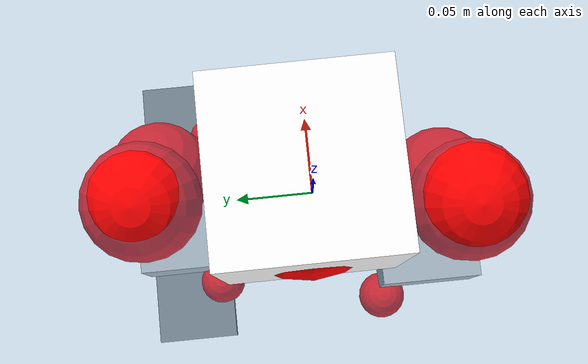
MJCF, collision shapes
<mujoco model="pi_12dof_release_v1">
  <compiler angle="radian" assetdir="assets" balanceinertia="true" inertiafromgeom="false"/>

  <option timestep="0.005" density="1.2" viscosity="2e-05"/>

  <size nkey="1"/>

  <visual>
    <quality shadowsize="8192"/>
    <map shadowclip="0.5"/>
  </visual>

  <default>
    <default class="/">
      <joint armature="0.01" damping="0.01" frictionloss="0.01"/>
      <geom contype="0" conaffinity="0" group="1" solref="-1000 -80"/>
      <site size="0.01 0.005 0.005" group="5"/>
      <general forcelimited="true" biastype="affine" gainprm="20" biasprm="0 -20 -0.5"/>
      <default class="foot">
        <geom size="0.0845 0.036 0.005" type="box" condim="6" group="4" priority="1" friction="0.9 0.2 0.2" solimp="0.015 1 0.005"/>
      </default>
      <default class="reward_collision_sphere">
        <geom group="5" rgba="1 0 0 1"/>
      </default>
    </default>
  </default>

  <asset>
    <texture type="skybox" colorspace="auto" name="//unnamed_texture_0" builtin="gradient" rgb1="0.95 0.95 0.95" rgb2="0.95 0.95 0.95" width="100" height="600"/>
    <texture type="2d" colorspace="auto" name="texplane" builtin="checker" rgb1="0.345 0.575 0.748" rgb2="0.345 0.575 0.748" markrgb="1 1 1" width="512" height="512"/>
    <material name="MatPlane" class="/" texture="texplane" texuniform="true" texrepeat="2 2" specular="0.9"/>
    <mesh name="baselink_1" class="/" file="baselink_1.STL"/>
    <mesh name="r_hip_pitch_link" class="/" file="r_hip_pitch_link.STL"/>
    <mesh name="r_hip_roll_link" class="/" file="r_hip_roll_link.STL"/>
    <mesh name="r_thigh_link" class="/" file="r_thigh_link.STL"/>
    <mesh name="r_calf_link" class="/" file="r_calf_link.STL"/>
    <mesh name="r_ankle_pitch_link" class="/" file="r_ankle_pitch_link.STL"/>
    <mesh name="r_ankle_roll_link" class="/" file="r_ankle_roll_link.STL"/>
    <mesh name="l_hip_pitch_link" class="/" file="l_hip_pitch_link.STL"/>
    <mesh name="l_hip_roll_link" class="/" file="l_hip_roll_link.STL"/>
    <mesh name="l_thigh_link" class="/" file="l_thigh_link.STL"/>
    <mesh name="l_calf_link" class="/" file="l_calf_link.STL"/>
    <mesh name="l_ankle_pitch_link" class="/" file="l_ankle_pitch_link.STL"/>
    <mesh name="l_ankle_roll_link" class="/" file="l_ankle_roll_link.STL"/>
  </asset>

  <worldbody>
    <geom name="floor" class="/" size="100 100 0.125" type="plane" group="0" material="MatPlane"/>
    <light name="toplight_shadow" class="/" pos="0 0 5" dir="0.0990148 0.0990148 -0.990148" type="directional" ambient="0.04 0.04 0.04" diffuse="0.55 0.55 0.55" specular="0.12 0.12 0.12"/>
    <light name="toplight_fill" class="/" pos="0 0 5" dir="0.0990148 0.0990148 -0.990148" type="directional" castshadow="false" ambient="0.04 0.04 0.04" diffuse="0.3 0.3 0.3" specular="0.08 0.08 0.08"/>
    <body name="trunk" pos="-0.00165617 0.00580523 0.00149227" quat="0.999996 -0.00181627 -0.00216629 0.000780472">
      <inertial pos="0.00710382 0.0105065 0.0237417" quat="0.692425 -0.00781576 -0.00333631 0.72144" mass="2.71111" diaginertia="0.0169788 0.0546398 0.000949043"/>
      <joint name="//unnamed_joint_0" type="free"/>
      <geom name="//unnamed_geom_1" class="/" type="mesh" density="0" rgba="1 1 1 1" mesh="baselink_1"/>
      <geom name="//unnamed_geom_2" class="/" size="0.0534015 0.0534015 0.0534015" pos="0 0 0.0592895" type="box" rgba="1 1 1 1"/>
      <geom name="//unnamed_geom_3" class="reward_collision_sphere" size="0.0587416" pos="0 0 0.0518783"/>
      <site name="imu" class="/" pos="-0.00616341 0.00827838 0.00830336" size="0.0106803"/>
      <camera name="track" class="/" pos="0 -2.80033 0" quat="0.707107 0.707107 0 0" mode="trackcom"/>
      <camera name="ego_camera" class="/" pos="0.0797101 0 0.133401" quat="-0.5 -0.5 0.5 0.5"/>
      <body name="r_hip_pitch_link" pos="-0.00293436 -0.02995 -0.023094" quat="0.992197 -1.10333e-05 -0.124682 0.000231497">
        <inertial pos="0.00267331 -0.0695211 0.00346972" quat="-0.0739604 0.688536 -0.0377596 0.720432" mass="0.459882" diaginertia="0.000144002 0.000548943 1.81405e-05"/>
        <joint name="r_hip_pitch_joint" class="/" pos="0 0 0" axis="0.00245649 -0.999996 0.00115266" range="-1.85395 1.15816" armature="0.0098115" damping="0" frictionloss="0.00543797"/>
        <geom name="//unnamed_geom_4" class="/" type="mesh" density="0" rgba="0.75294 0.75294 0.75294 1" mesh="r_hip_pitch_link"/>
        <geom name="//unnamed_geom_5" class="/" size="0.000534015 0.000534015 0.000534015" type="box" rgba="0.75294 0.75294 0.75294 1"/>
        <body name="r_hip_roll_link" pos="-0.00786926 -0.0835003 -0.000834339" quat="0.999984 -0.0034499 0.00408421 -0.0016158">
          <inertial pos="-0.000714078 -0.0110652 -0.0458741" quat="0.706073 -0.0680663 -0.0757843 0.700774" mass="0.457024" diaginertia="0.000512471 0.00132291 2.94403e-05"/>
          <joint name="r_hip_roll_joint" class="/" pos="0 0 0" axis="-0.999806 0.0196164 -0.00183143" stiffness="0.0126205" range="-0.100043 0.482592" armature="0.00638082" damping="0" frictionloss="0.0100036"/>
          <geom name="//unnamed_geom_6" class="/" type="mesh" density="0" rgba="0.75294 0.75294 0.75294 1" mesh="r_hip_roll_link"/>
          <geom name="//unnamed_geom_7" class="/" size="0.000534015 0.000534015 0.000534015" type="box" rgba="0.75294 0.75294 0.75294 1"/>
          <geom name="//unnamed_geom_8" class="reward_collision_sphere" size="0.0427212"/>
          <body name="r_thigh_link" pos="-0.00281679 0.000556938 -0.0481371" quat="0.999999 0.000407938 0.00108252 4.10342e-05">
            <inertial pos="0.00903615 0.00697546 -0.027675" quat="0.734886 0.678117 -0.008566 -0.00504125" mass="0.142987" diaginertia="0.000180441 0.000477815 1.36002e-05"/>
            <joint name="r_thigh_joint" class="/" pos="0 0 0" axis="0.0405097 -0.0116822 -0.999111" stiffness="0.0490507" range="-0.091378 0.805037" armature="0.00603469" damping="0.0627304" frictionloss="0.00519318"/>
            <geom name="//unnamed_geom_9" class="/" type="mesh" density="0" rgba="0.75294 0.75294 0.75294 1" mesh="r_thigh_link"/>
            <geom name="//unnamed_geom_10" class="/" size="0.000534015 0.000534015 0.000534015" type="box" rgba="0.75294 0.75294 0.75294 1"/>
            <body name="r_calf_link" pos="0.0108744 0.00122064 -0.0476956" quat="0.947596 1.17385e-07 0.319471 -7.64225e-05">
              <inertial pos="-0.00132783 -0.00410421 -0.0484018" quat="0.998782 0.005971 -0.0274408 0.0405602" mass="1.04275" diaginertia="0.00526211 0.0188213 3.88751e-05"/>
              <joint name="r_calf_joint" class="/" pos="0 0 0" axis="-0.029334 -0.998355 -0.0492575" stiffness="0.0111097" range="-1.56742 0.641644" armature="0.00994664" damping="0.0162842" frictionloss="0.00564969"/>
              <geom name="//unnamed_geom_11" class="/" type="mesh" density="0" rgba="0.75294 0.75294 0.75294 1" mesh="r_calf_link"/>
              <geom name="//unnamed_geom_12" class="/" size="0.000534015 0.000534015 0.000534015" type="box" rgba="0.75294 0.75294 0.75294 1"/>
              <geom name="//unnamed_geom_13" class="reward_collision_sphere" size="0.0427212"/>
              <body name="r_ankle_pitch_link" pos="0.00252294 0.00462087 -0.0950421" quat="0.980107 0.00066926 -0.198471 -1.26074e-05">
                <inertial pos="0.0010895 0.0103955 -0.00965239" quat="-0.0046675 0.707406 -0.00994067 0.706722" mass="0.210115" diaginertia="0.000445629 0.00118408 2.65867e-05"/>
                <joint name="r_ankle_pitch_joint" class="/" pos="0 0 0" axis="0.00165217 -0.999999 -0.000214372" stiffness="0.00746704" range="-1.17984 0.694012" armature="0.00668516" damping="0.00880309" frictionloss="0.00589456"/>
                <geom name="//unnamed_geom_14" class="/" type="mesh" density="0" rgba="0.75294 0.75294 0.75294 1" mesh="r_ankle_pitch_link"/>
                <geom name="//unnamed_geom_15" class="/" size="0.0416531 0.0427212 0.0267007" type="box" rgba="0.75294 0.75294 0.75294 1"/>
                <body name="r_ankle_roll_link" pos="0.0796546 0.0116386 -0.0090021" quat="1 0.000124213 -7.95772e-05 0.000124114">
                  <inertial pos="-0.020147 -0.00534874 -0.00921643" quat="0.562634 0.441511 0.428446 0.552218" mass="0.54516" diaginertia="0.00136392 0.0044086 5.80316e-05"/>
                  <joint name="r_ankle_roll_joint" class="/" pos="0 0 0" axis="-0.99817 -0.0554476 0.024118" range="-0.374738 0.00123603" armature="0.00984646" damping="0" frictionloss="0.00984704"/>
                  <geom name="//unnamed_geom_16" class="/" type="mesh" density="0" rgba="0.75294 0.75294 0.75294 1" mesh="r_ankle_roll_link"/>
                  <geom name="//unnamed_geom_17" class="/" type="mesh" rgba="0.75294 0.75294 0.75294 1" mesh="r_ankle_roll_link"/>
                  <geom name="right_foot" class="foot" size="0.065465 0.0221434 0.00473928" pos="-0.0542029 0 -0.0326092"/>
                  <geom name="//unnamed_geom_19" class="reward_collision_sphere" size="0.0427212" pos="-0.0531401 0 -0.0148224"/>
                  <geom name="//unnamed_geom_20" class="reward_collision_sphere" size="0.0213606" pos="0.015942 0.0280033 -0.0296448"/>
                  <geom name="//unnamed_geom_21" class="reward_collision_sphere" size="0.0213606" pos="-0.127536 0.0280033 -0.0296448"/>
                  <site name="right_foot" class="foot" pos="-0.0542029 0 -0.0326092" size="0.0106803"/>
                </body>
              </body>
            </body>
          </body>
        </body>
      </body>
      <body name="l_hip_pitch_link" pos="0.00607523 0.028991 -0.0313067" quat="0.992088 -0.000124066 -0.125543 0.000651381">
        <inertial pos="0.00103453 0.0763309 -0.00527134" quat="-0.0369268 0.706482 0.0283178 0.706199" mass="0.559065" diaginertia="0.000179418 0.000610747 2.1889e-05"/>
        <joint name="l_hip_pitch_joint" class="/" pos="0 0 0" axis="0.00954016 0.999954 0.000135287" range="-1.21874 1.58193" armature="0.0102923" damping="0.0261722" frictionloss="0.00991059"/>
        <geom name="//unnamed_geom_22" class="/" type="mesh" density="0" rgba="0.75294 0.75294 0.75294 1" mesh="l_hip_pitch_link"/>
        <geom name="//unnamed_geom_23" class="/" size="0.000534015 0.000534015 0.000534015" type="box" rgba="0.75294 0.75294 0.75294 1"/>
        <body name="l_hip_roll_link" pos="0.00599084 0.0832575 -0.000992523" quat="0.999988 -0.00241556 0.003532 -0.00231183">
          <inertial pos="0.00143918 -0.0115133 -0.0470898" quat="0.718504 -0.0683642 -0.0971677 0.685301" mass="0.537814" diaginertia="0.000477999 0.00141253 2.56201e-05"/>
          <joint name="l_hip_roll_joint" class="/" pos="0 0 0" axis="-0.999518 -0.00349859 0.0308468" range="-0.531444 0.0773155" armature="0.00493244" damping="0.00885459" frictionloss="0.0130709"/>
          <geom name="//unnamed_geom_24" class="/" type="mesh" density="0" rgba="0.75294 0.75294 0.75294 1" mesh="l_hip_roll_link"/>
          <geom name="//unnamed_geom_25" class="/" size="0.000534015 0.000534015 0.000534015" type="box" rgba="0.75294 0.75294 0.75294 1"/>
          <geom name="//unnamed_geom_26" class="reward_collision_sphere" size="0.0427212"/>
          <body name="l_thigh_link" pos="0.00352034 0.00010064 -0.0578072" quat="0.999998 2.29744e-05 0.00155695 0.00149019">
            <inertial pos="0.00235397 -0.00953854 -0.0374094" quat="0.670238 0.742136 0.00208919 0.00322079" mass="0.140529" diaginertia="0.00018404 0.000554769 1.41994e-05"/>
            <joint name="l_thigh_joint" class="/" pos="0 0 0" axis="-0.000843912 -0.0011559 -0.999999" range="-0.638007 0.278027" armature="0.0132363" damping="0.0492253" frictionloss="0.00975948"/>
            <geom name="//unnamed_geom_27" class="/" type="mesh" density="0" rgba="0.75294 0.75294 0.75294 1" mesh="l_thigh_link"/>
            <geom name="//unnamed_geom_28" class="/" size="0.000534015 0.000534015 0.000534015" type="box" rgba="0.75294 0.75294 0.75294 1"/>
            <body name="l_calf_link" pos="0.0108007 0.0026825 -0.0533753" quat="0.94873 0.00464199 0.316051 0.000730819">
              <inertial pos="0.00226856 0.0067303 -0.053251" quat="0.999926 0.00219943 0.00273658 0.0116764" mass="1.03965" diaginertia="0.00496811 0.0193684 3.48371e-05"/>
              <joint name="l_calf_joint" class="/" pos="0 0 0" axis="0.0222348 0.999742 -0.00464503" stiffness="0.0563544" range="-0.815335 1.6918" armature="0.0122161" damping="0.0182271" frictionloss="0.0100699"/>
              <geom name="//unnamed_geom_29" class="/" type="mesh" density="0" rgba="0.75294 0.75294 0.75294 1" mesh="l_calf_link"/>
              <geom name="//unnamed_geom_30" class="/" size="0.000534015 0.000534015 0.000534015" type="box" rgba="0.75294 0.75294 0.75294 1"/>
              <geom name="//unnamed_geom_31" class="reward_collision_sphere" size="0.0427212"/>
              <body name="l_ankle_pitch_link" pos="0.00627827 -0.0071611 -0.101598" quat="0.980172 -8.65213e-05 -0.198143 -0.00121915">
                <inertial pos="0.00576911 0.0057504 -0.00195523" quat="-0.000402743 0.70836 0.000643539 0.705851" mass="0.209504" diaginertia="0.000409033 0.00120565 2.852e-05"/>
                <joint name="l_ankle_pitch_joint" class="/" pos="0 0 0" axis="-0.00692521 0.999975 0.00129437" range="-0.528011 1.27615" armature="0.0150862" damping="0" frictionloss="0.0134644"/>
                <geom name="//unnamed_geom_32" class="/" type="mesh" density="0" rgba="0.75294 0.75294 0.75294 1" mesh="l_ankle_pitch_link"/>
                <geom name="//unnamed_geom_33" class="/" size="0.0416531 0.0427212 0.0267007" type="box" rgba="0.75294 0.75294 0.75294 1"/>
                <body name="l_ankle_roll_link" pos="0.075382 0.00243127 -0.00368029" quat="1 0.000106453 0.00032997 0.000102889">
                  <inertial pos="-0.0207725 0.000603707 -0.0144559" quat="0.559749 0.430671 0.434249 0.559135" mass="0.587304" diaginertia="0.00151473 0.00530505 6.24393e-05"/>
                  <joint name="l_ankle_roll_joint" class="/" pos="0 0 0" axis="-0.999989 -0.00224228 -0.00416092" stiffness="0.00498497" range="-0.366044 0.187139" armature="0.0103841" damping="0.0585772" frictionloss="0.011859"/>
                  <geom name="//unnamed_geom_34" class="/" type="mesh" density="0" rgba="0.75294 0.75294 0.75294 1" mesh="l_ankle_roll_link"/>
                  <geom name="//unnamed_geom_35" class="/" type="mesh" rgba="0.75294 0.75294 0.75294 1" mesh="l_ankle_roll_link"/>
                  <geom name="left_foot" class="foot" size="0.126894 0.0370515 0.00581704" pos="-0.0542029 0 -0.0326092"/>
                  <geom name="//unnamed_geom_37" class="reward_collision_sphere" size="0.0427212" pos="-0.0531401 0 -0.0148224"/>
                  <geom name="//unnamed_geom_38" class="reward_collision_sphere" size="0.0213606" pos="0.015942 -0.0280033 -0.0296448"/>
                  <geom name="//unnamed_geom_39" class="reward_collision_sphere" size="0.0213606" pos="-0.127536 -0.0280033 -0.0296448"/>
                  <site name="left_foot" class="foot" pos="-0.0542029 0 -0.0326092" size="0.0106803"/>
                </body>
              </body>
            </body>
          </body>
        </body>
      </body>
    </body>
  </worldbody>

  <contact>
    <pair class="/" geom1="floor" geom2="right_foot" name="//unnamed_contact_1"/>
    <pair class="/" geom1="floor" geom2="left_foot" name="//unnamed_contact_0"/>
  </contact>

  <actuator>
    <general name="r_hip_pitch_joint" class="/" joint="r_hip_pitch_joint" forcerange="-24.7619 24.7619" gainprm="23.2112" biasprm="0 -23.2112 -0.52128"/>
    <general name="r_hip_roll_joint" class="/" joint="r_hip_roll_joint" forcerange="-13.1176 13.1176" gainprm="23.2112" biasprm="0 -23.2112 -0.52128"/>
    <general name="r_thigh_joint" class="/" joint="r_thigh_joint" forcerange="-23.0662 23.0662" gainprm="23.2112" biasprm="0 -23.2112 -0.52128"/>
    <general name="r_calf_joint" class="/" joint="r_calf_joint" forcerange="-23.6216 23.6216" gainprm="23.2112" biasprm="0 -23.2112 -0.52128"/>
    <general name="r_ankle_pitch_joint" class="/" joint="r_ankle_pitch_joint" forcerange="-21.7474 21.7474" gainprm="23.2112" biasprm="0 -23.2112 -0.52128"/>
    <general name="r_ankle_roll_joint" class="/" joint="r_ankle_roll_joint" forcerange="-16.4574 16.4574" gainprm="23.2112" biasprm="0 -23.2112 -0.52128"/>
    <general name="l_hip_pitch_joint" class="/" joint="l_hip_pitch_joint" forcerange="-19.5919 19.5919" gainprm="23.2112" biasprm="0 -23.2112 -0.52128"/>
    <general name="l_hip_roll_joint" class="/" joint="l_hip_roll_joint" forcerange="-21.5677 21.5677" gainprm="23.2112" biasprm="0 -23.2112 -0.52128"/>
    <general name="l_thigh_joint" class="/" joint="l_thigh_joint" forcerange="-23.8242 23.8242" gainprm="23.2112" biasprm="0 -23.2112 -0.52128"/>
    <general name="l_calf_joint" class="/" joint="l_calf_joint" forcerange="-25.7505 25.7505" gainprm="23.2112" biasprm="0 -23.2112 -0.52128"/>
    <general name="l_ankle_pitch_joint" class="/" joint="l_ankle_pitch_joint" forcerange="-20.8953 20.8953" gainprm="23.2112" biasprm="0 -23.2112 -0.52128"/>
    <general name="l_ankle_roll_joint" class="/" joint="l_ankle_roll_joint" forcerange="-28.0074 28.0074" gainprm="23.2112" biasprm="0 -23.2112 -0.52128"/>
  </actuator>

  <sensor>
    <gyro site="imu" name="imu_angular_velocity"/>
    <velocimeter site="imu" name="imu_linear_velocity"/>
    <framelinvel objtype="site" objname="left_foot" name="left_foot_global_linear_velocity"/>
    <framelinvel objtype="site" objname="right_foot" name="right_foot_global_linear_velocity"/>
  </sensor>

  <keyframe>
    <key name="home" qpos="0 0 0.291 1 0 0 0 0.4 0 0 -0.8 0.4 0 -0.4 0 0 0.8 -0.4 0"/>
  </keyframe>
</mujoco>
